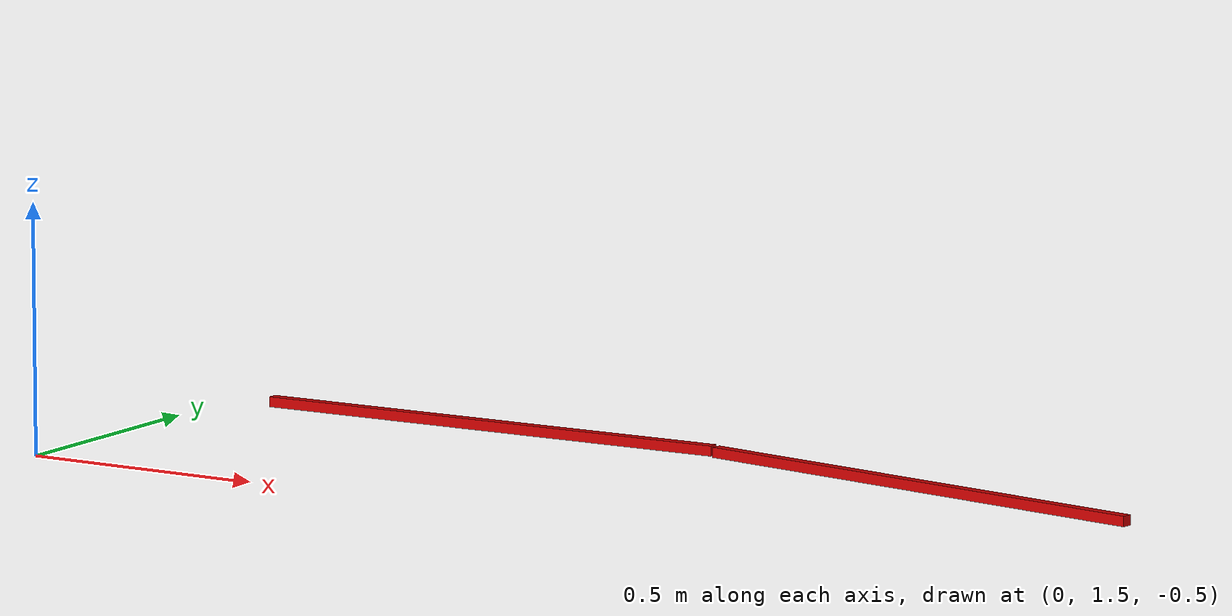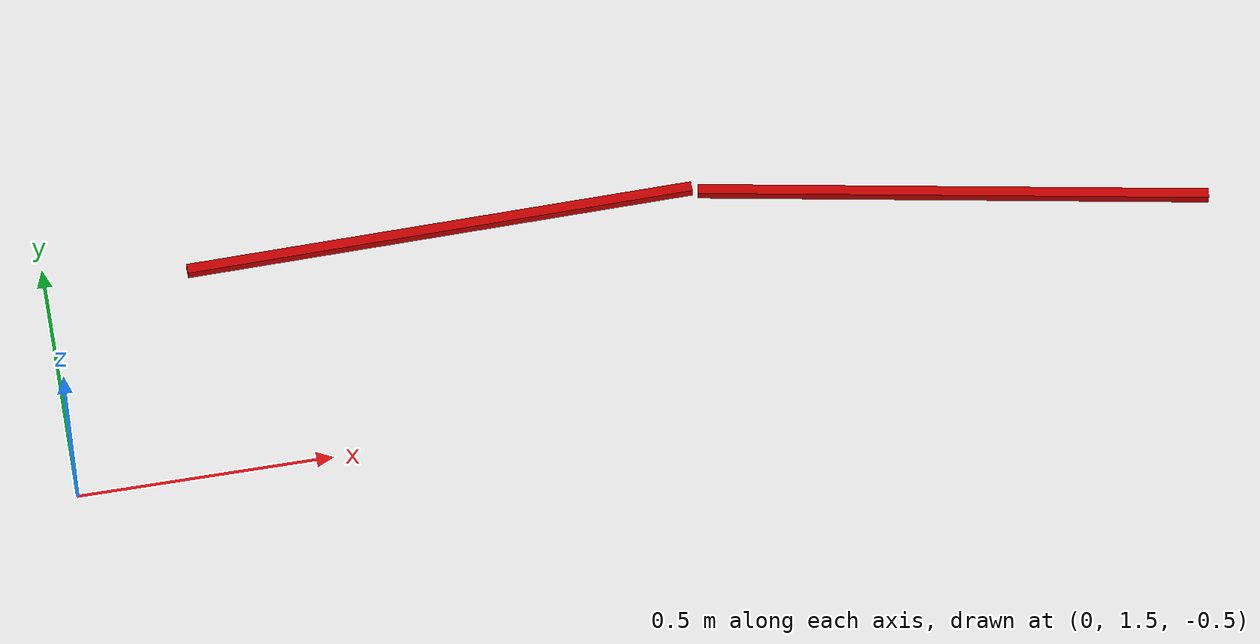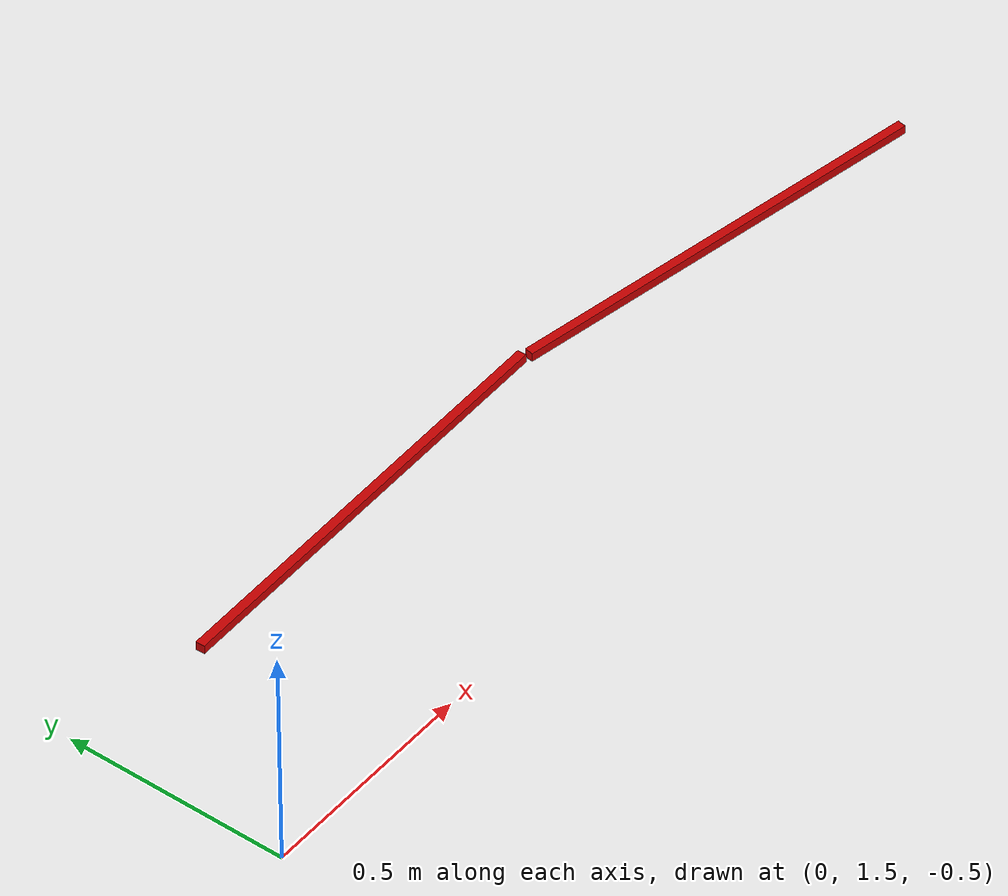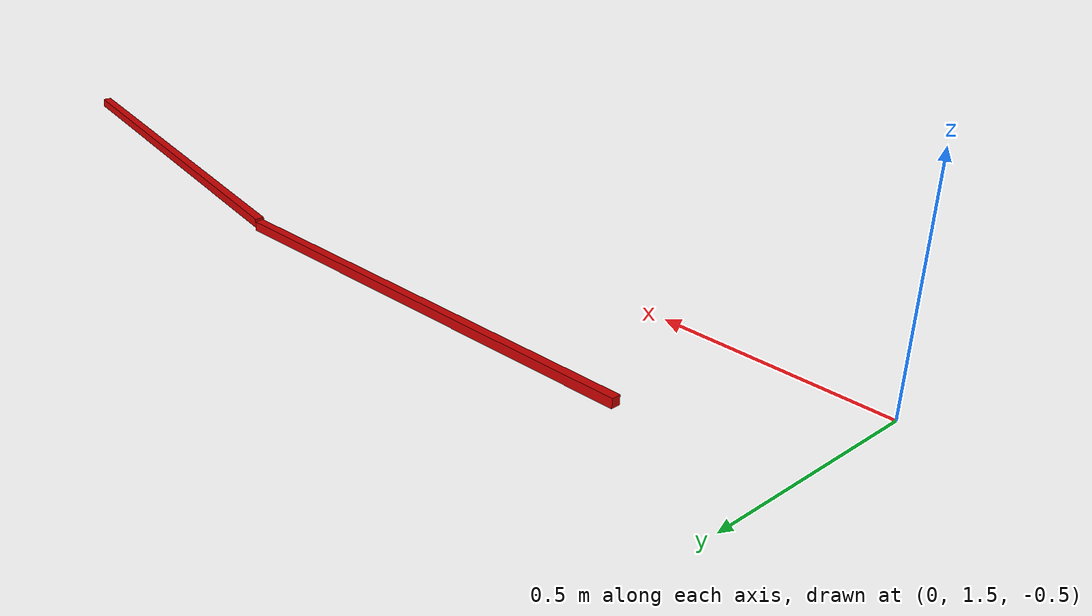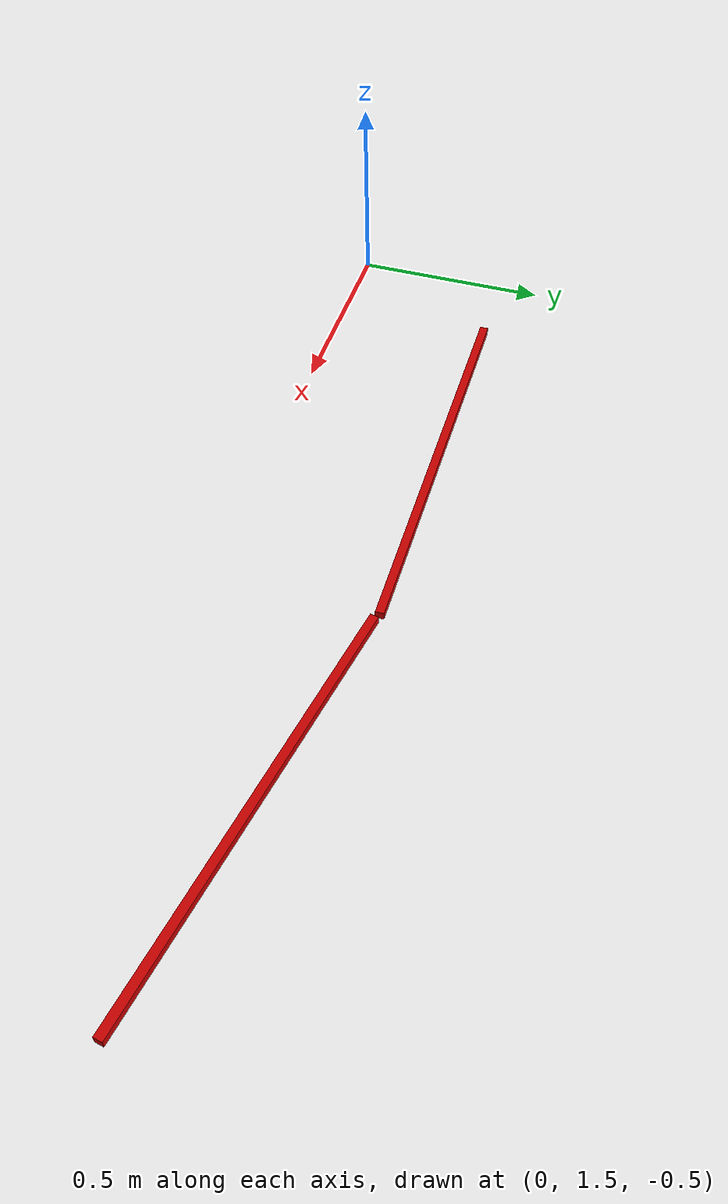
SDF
<?xml version='1.0'?>
<sdf version='1.7'>
  <model name='unit_box'>
    <link name='link'>
      <inertial>
        <mass>1</mass>
        <inertia>
          <ixx>0.166667</ixx>
          <ixy>0</ixy>
          <ixz>0</ixz>
          <iyy>0.166667</iyy>
          <iyz>0</iyz>
          <izz>0.166667</izz>
        </inertia>
        <pose>0 0 0 0 -0 0</pose>
      </inertial>
      <self_collide>0</self_collide>
      <enable_wind>0</enable_wind>
      <kinematic>0</kinematic>
      <pose>1.78048 1.83307 -0.430086 0 -0 1.39228</pose>
      <gravity>1</gravity>
      <visual name='visual'>
        <geometry>
          <box>
            <size>0.02 1 0.02</size>
          </box>
        </geometry>
        <material>
          <script>
            <name>Gazebo/Grey</name>
            <uri>file://media/materials/scripts/gazebo.material</uri>
          </script>
          <shader type='pixel'>
            <normal_map>__default__</normal_map>
          </shader>
          <ambient>0.937 0.161 0.161 1</ambient>
          <diffuse>0.8 0 0 1</diffuse>
          <specular>0.01 0.01 0.01 1</specular>
          <emissive>0 0 0 1</emissive>
        </material>
        <pose>0 0 0 0 -0 0</pose>
        <transparency>0</transparency>
        <cast_shadows>1</cast_shadows>
      </visual>
    </link>
    <link name='link_clone'>
      <inertial>
        <mass>1</mass>
        <inertia>
          <ixx>0.166667</ixx>
          <ixy>0</ixy>
          <ixz>0</ixz>
          <iyy>0.166667</iyy>
          <iyz>0</iyz>
          <izz>0.166667</izz>
        </inertia>
        <pose>0 0 0 0 -0 0</pose>
      </inertial>
      <self_collide>0</self_collide>
      <enable_wind>0</enable_wind>
      <kinematic>0</kinematic>
      <pose>0.777665 1.92237 -0.430086 0 -0 1.58622</pose>
      <gravity>1</gravity>
      <visual name='visual'>
        <geometry>
          <box>
            <size>0.02 1 0.02</size>
          </box>
        </geometry>
        <material>
          <script>
            <name>Gazebo/Grey</name>
            <uri>file://media/materials/scripts/gazebo.material</uri>
          </script>
          <shader type='pixel'>
            <normal_map>__default__</normal_map>
          </shader>
          <ambient>0.937 0.161 0.161 1</ambient>
          <diffuse>0.8 0 0 1</diffuse>
          <specular>0.01 0.01 0.01 1</specular>
          <emissive>0 0 0 1</emissive>
        </material>
        <pose>0 0 0 0 -0 0</pose>
        <transparency>0</transparency>
        <cast_shadows>1</cast_shadows>
      </visual>
    </link>
    <static>0</static>
    <allow_auto_disable>1</allow_auto_disable>
  </model>
</sdf>
